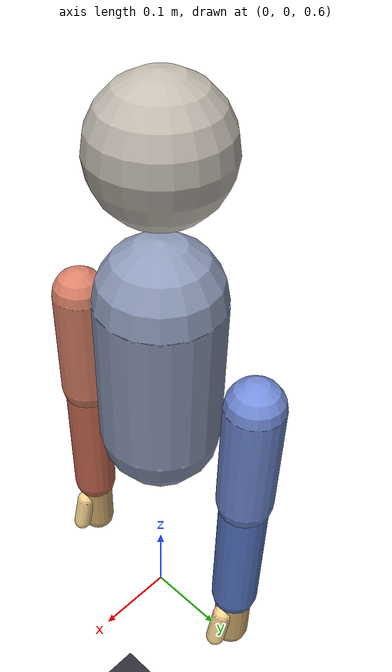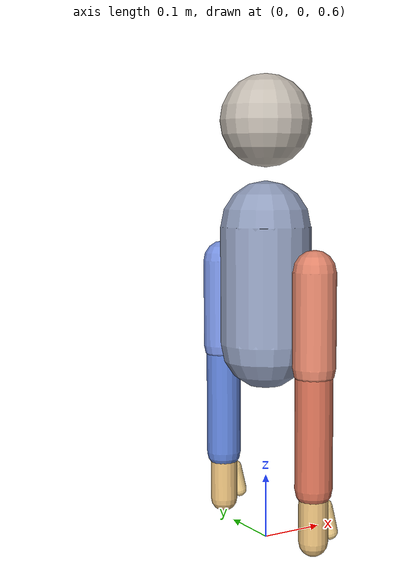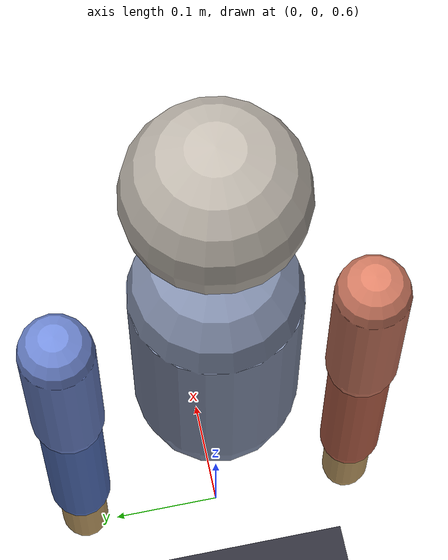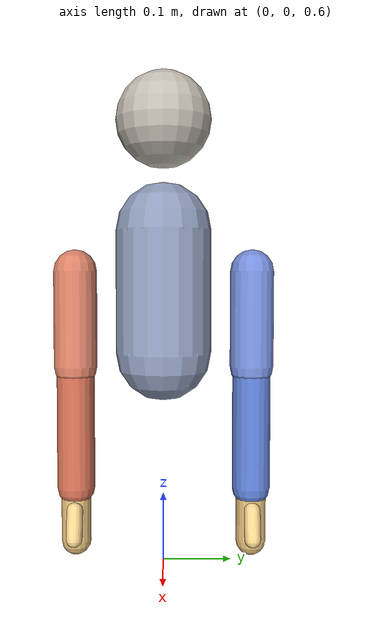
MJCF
<mujoco model="r1_arm_preview">
  <compiler angle="radian" inertiafromgeom="true"/>
  <option gravity="0 0 0" timestep="0.005"/>
  <default>
    <joint damping="0.5" armature="0.01"/>
    <geom condim="1" friction="0.6"/>
  </default>
  <worldbody>
    <light pos="0.6 -0.4 1.6" dir="-0.3 0.2 -1" diffuse="0.8 0.8 0.8"/>
    <camera name="side" pos="1.8 -1.4 1.45" xyaxes="0.78 1 0 -0.18 -0.14 1"/>
    <geom name="floor" type="plane" size="1.2 1.2 0.05" rgba="0.18 0.18 0.22 1" contype="0" conaffinity="0"/>
    <body name="torso" pos="0 0 0.85">
      <geom name="torso_visual" type="capsule" size="0.07" fromto="0 0 0.06 0 0 0.24" rgba="0.55 0.60 0.72 1" contype="0" conaffinity="0"/>
      <geom name="torso_collision" type="capsule" size="0.07" fromto="0 0 0.06 0 0 0.24" rgba="0.2 0.6 0.2 0.15" contype="1" conaffinity="1"/>
      <geom name="head_visual" type="sphere" size="0.07" pos="0 0 0.40" rgba="0.75 0.72 0.68 1" contype="0" conaffinity="0"/>
      <geom name="head_collision" type="sphere" size="0.07" pos="0 0 0.40" rgba="0.2 0.6 0.2 0.15" contype="1" conaffinity="1"/>

      <body name="left_shoulder_pitch_link" pos="0 0.13 0.22">
        <inertial pos="0 0 0" mass="0.2" diaginertia="0.001 0.001 0.001"/>
        <joint name="left_shoulder_pitch_joint" type="hinge" axis="0 1 0" range="-3.1416 2.0944"/>
        <body name="left_shoulder_roll_link">
          <inertial pos="0 0 0" mass="0.2" diaginertia="0.001 0.001 0.001"/>
          <joint name="left_shoulder_roll_joint" type="hinge" axis="1 0 0" range="-0.2269 2.4784"/>
          <body name="left_shoulder_yaw_link">
            <joint name="left_shoulder_yaw_joint" type="hinge" axis="0 0 1" range="-1.9199 1.9199"/>
            <geom name="left_upper_visual" type="capsule" size="0.032" fromto="0 0 -0.04 0 0 -0.18" rgba="0.45 0.55 0.85 1" contype="0" conaffinity="0"/>
            <geom name="left_upper_collision" type="capsule" size="0.032" fromto="0 0 -0.04 0 0 -0.18" rgba="0.2 0.6 0.2 0.15" contype="1" conaffinity="1"/>
            <body name="left_elbow_link" pos="0 0 -0.18">
              <joint name="left_elbow_joint" type="hinge" axis="0 -1 0" range="-0.9757 2.1850"/>
              <geom name="left_forearm_visual" type="capsule" size="0.028" fromto="0 0 0 0 0 -0.18" rgba="0.35 0.48 0.80 1" contype="0" conaffinity="0"/>
              <geom name="left_forearm_collision" type="capsule" size="0.028" fromto="0 0 0 0 0 -0.18" rgba="0.2 0.6 0.2 0.15" contype="1" conaffinity="1"/>
              <body name="left_wrist_roll_link" pos="0 0 -0.18">
                <joint name="left_wrist_roll_joint" type="hinge" axis="0 0 -1" range="-1.9199 1.9199"/>
                <geom name="left_hand_visual" type="capsule" size="0.022" fromto="0 0 0 0 0 -0.08" rgba="0.85 0.70 0.45 1" contype="0" conaffinity="0"/>
                <geom name="left_hand_knuckle" type="capsule" size="0.012" fromto="0.02 0 -0.03 0.03 0 -0.07" rgba="0.95 0.82 0.55 1" contype="0" conaffinity="0"/>
                <geom name="left_hand_collision" type="capsule" size="0.022" fromto="0 0 0 0 0 -0.08" rgba="0.2 0.6 0.2 0.15" contype="1" conaffinity="1"/>
              </body>
            </body>
          </body>
        </body>
      </body>

      <body name="right_shoulder_pitch_link" pos="0 -0.13 0.22">
        <inertial pos="0 0 0" mass="0.2" diaginertia="0.001 0.001 0.001"/>
        <joint name="right_shoulder_pitch_joint" type="hinge" axis="0 1 0" range="-3.1416 2.0944"/>
        <body name="right_shoulder_roll_link">
          <inertial pos="0 0 0" mass="0.2" diaginertia="0.001 0.001 0.001"/>
          <joint name="right_shoulder_roll_joint" type="hinge" axis="1 0 0" range="-2.4784 0.2269"/>
          <body name="right_shoulder_yaw_link">
            <joint name="right_shoulder_yaw_joint" type="hinge" axis="0 0 1" range="-1.9199 1.9199"/>
            <geom name="right_upper_visual" type="capsule" size="0.032" fromto="0 0 -0.04 0 0 -0.18" rgba="0.85 0.50 0.40 1" contype="0" conaffinity="0"/>
            <geom name="right_upper_collision" type="capsule" size="0.032" fromto="0 0 -0.04 0 0 -0.18" rgba="0.2 0.6 0.2 0.15" contype="1" conaffinity="1"/>
            <body name="right_elbow_link" pos="0 0 -0.18">
              <joint name="right_elbow_joint" type="hinge" axis="0 -1 0" range="-0.9757 2.1850"/>
              <geom name="right_forearm_visual" type="capsule" size="0.028" fromto="0 0 0 0 0 -0.18" rgba="0.80 0.42 0.32 1" contype="0" conaffinity="0"/>
              <geom name="right_forearm_collision" type="capsule" size="0.028" fromto="0 0 0 0 0 -0.18" rgba="0.2 0.6 0.2 0.15" contype="1" conaffinity="1"/>
              <body name="right_wrist_roll_link" pos="0 0 -0.18">
                <joint name="right_wrist_roll_joint" type="hinge" axis="0 0 -1" range="-1.9199 1.9199"/>
                <geom name="right_hand_visual" type="capsule" size="0.022" fromto="0 0 0 0 0 -0.08" rgba="0.85 0.70 0.45 1" contype="0" conaffinity="0"/>
                <geom name="right_hand_knuckle" type="capsule" size="0.012" fromto="0.02 0 -0.03 0.03 0 -0.07" rgba="0.95 0.82 0.55 1" contype="0" conaffinity="0"/>
                <geom name="right_hand_collision" type="capsule" size="0.022" fromto="0 0 0 0 0 -0.08" rgba="0.2 0.6 0.2 0.15" contype="1" conaffinity="1"/>
              </body>
            </body>
          </body>
        </body>
      </body>
    </body>
  </worldbody>
</mujoco>
